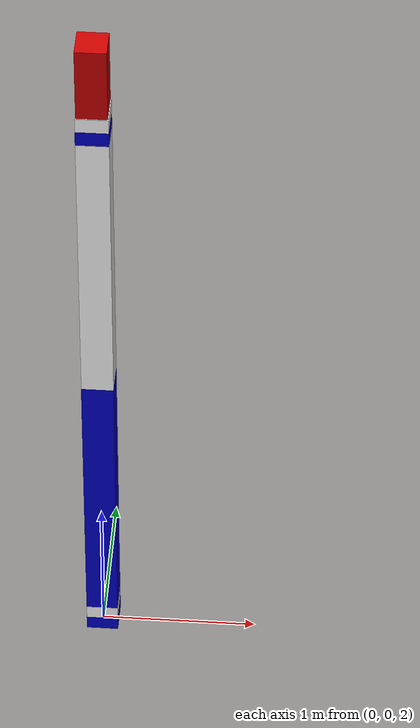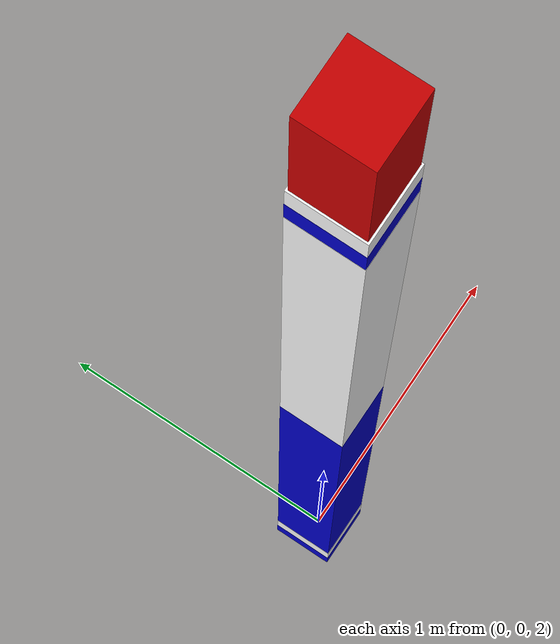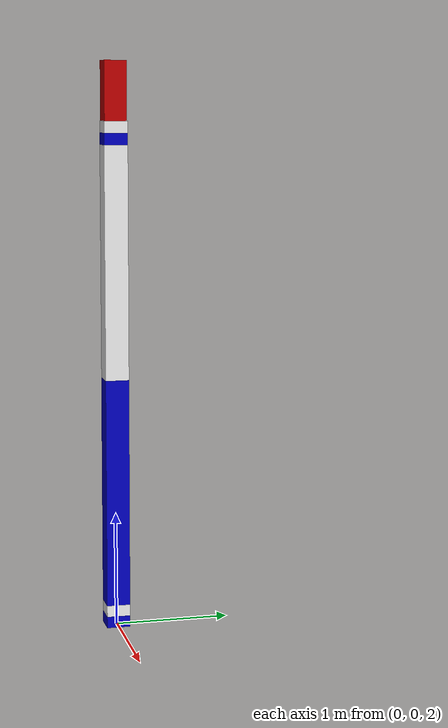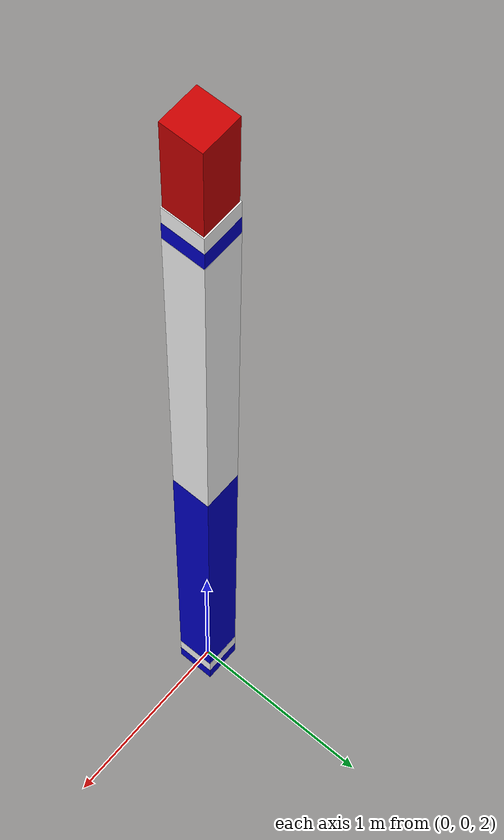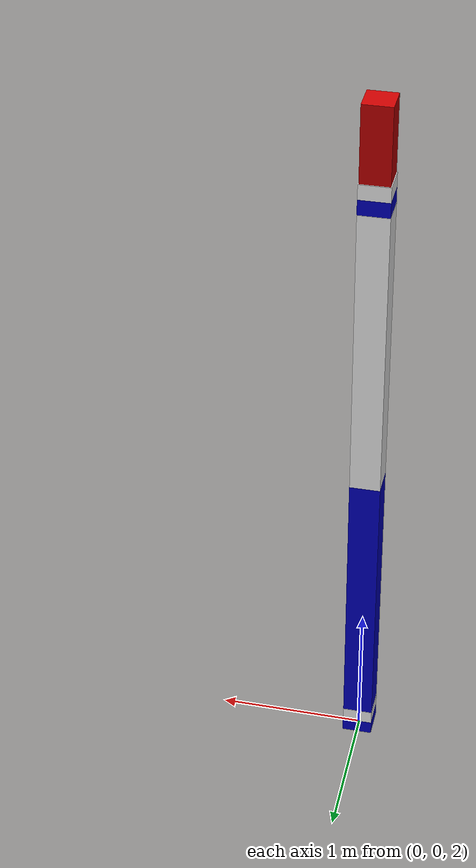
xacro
<?xml version="1.0"?>
<robot name="multiple" xmlns:xacro="http://ros.org/wiki/xacro">

  <xacro:property name="x" value="1 0 0" />
  <xacro:property name="y" value="0 1 0" />
  <xacro:property name="z" value="0 0 1" />

  <xacro:macro name="mylink" params="name width len material">
    <link name="${name}">
        <visual>
            <geometry>
                <box size="${width} ${width} ${len}"/>
            </geometry>
            <origin rpy="0 0 0" xyz="0 0 ${len/2}"/>
            <material name="${material}"/>
        </visual>
    </link>
  </xacro:macro>

  <xacro:macro name="module" params="name child len width childaxis material">
    <xacro:mylink name="${name}" width="${width}" len="${len}" material="${material}"/>
    <joint name="${name}${child}" type="revolute">
      <parent link="${name}"/>
      <child link="${child}"/>
      <axis xyz="${childaxis}"/>
      <origin xyz="0 0 ${len}"/>
      <limit lower="-3.14" upper="3.14" effort="1" velocity="1"/>
    </joint>
  </xacro:macro>

  <material name="blue">
    <color rgba="0 0 0.8 1"/>
  </material>

  <material name="white">
    <color rgba="1 1 1 1"/>
  </material>

  <material name="red">
    <color rgba="0.8 0 0 1"/>
  </material>

  <link name="world"/>

  <joint name="fixed" type="fixed">
    <parent link="world"/>
    <child link="base"/>
    <origin xyz="0 0 2"/>
  </joint>

  <xacro:mylink name="ee" width="0.19" len="0.5" material="red"/>

  <xacro:module name="base" child="u1" childaxis="${y}" len="0.1" width="0.205" material="blue"/>
  <xacro:module name="u1" child="u2" childaxis="${x}" len="0.1" width="0.204" material="white"/>
  <xacro:module name="u2" child="u3" childaxis="-1 0 0" len="2" width="0.203" material="blue"/>
  <xacro:module name="u3" child="u4" childaxis="${z}" len="2" width="0.202" material="white"/>
  <xacro:module name="u4" child="u5" childaxis="${x}" len="0.1" width="0.201" material="blue"/>
  <xacro:module name="u5" child="ee" childaxis="${y}" len="0.1" width="0.2" material="white"/>

</robot>
